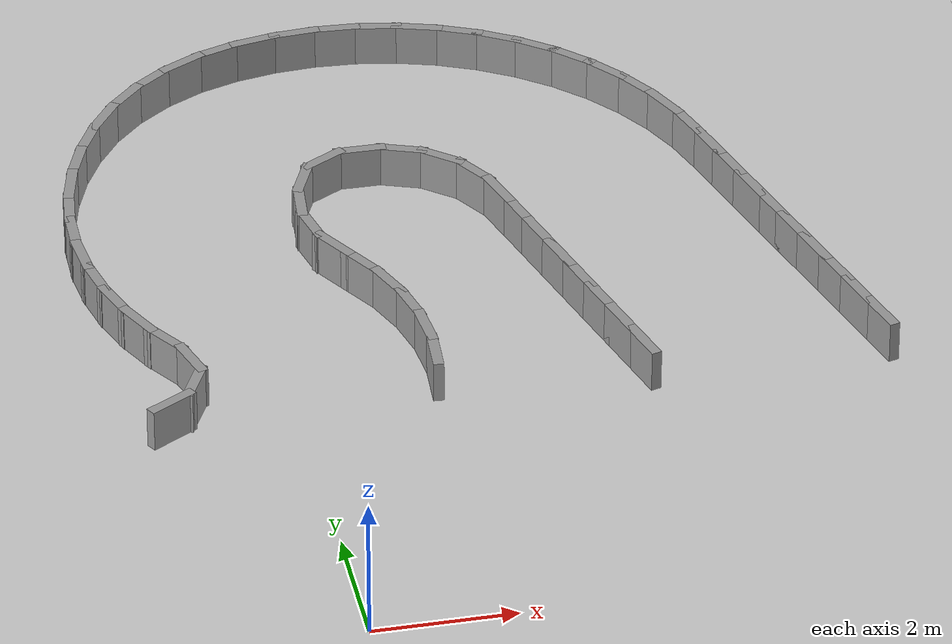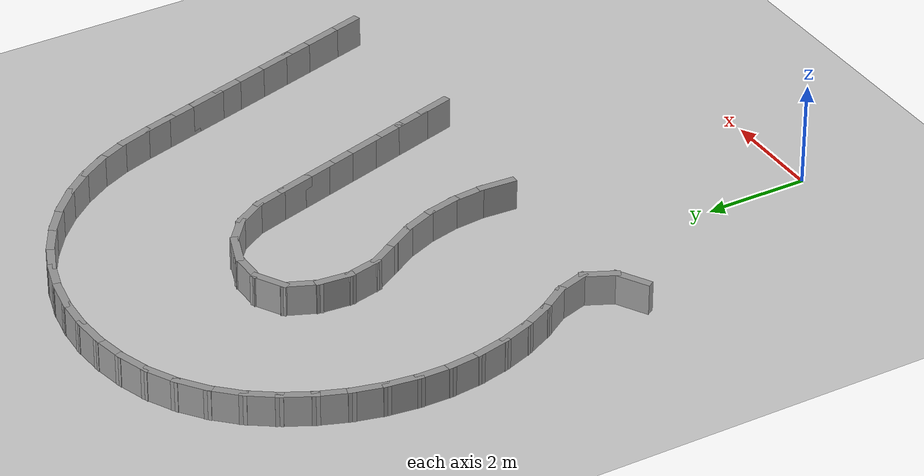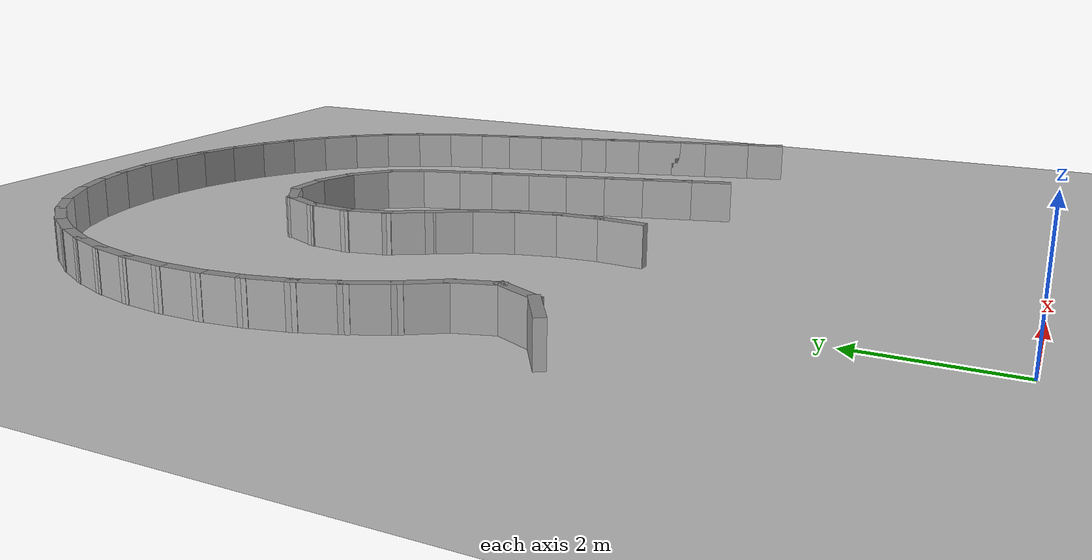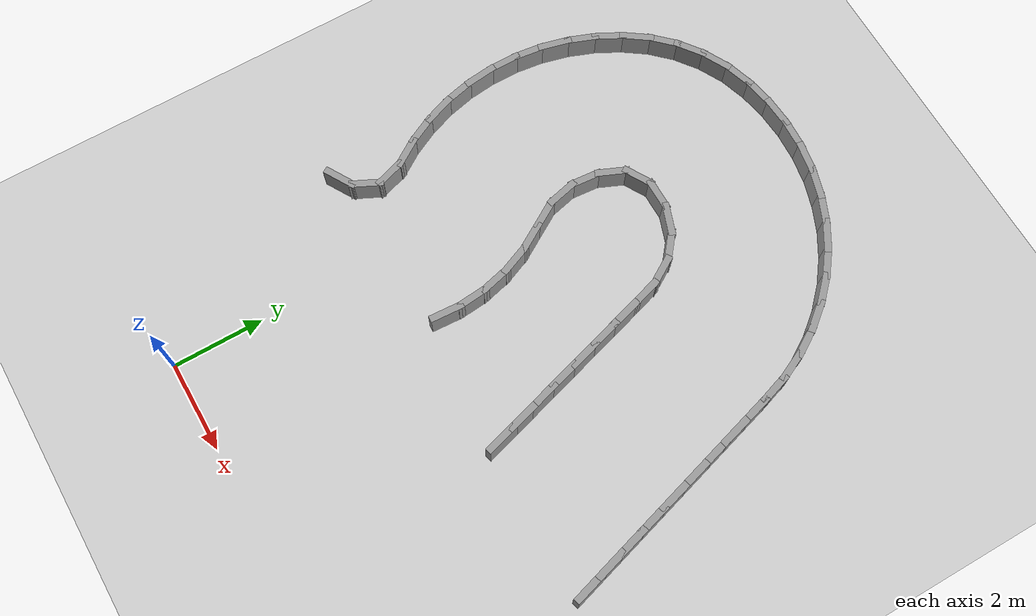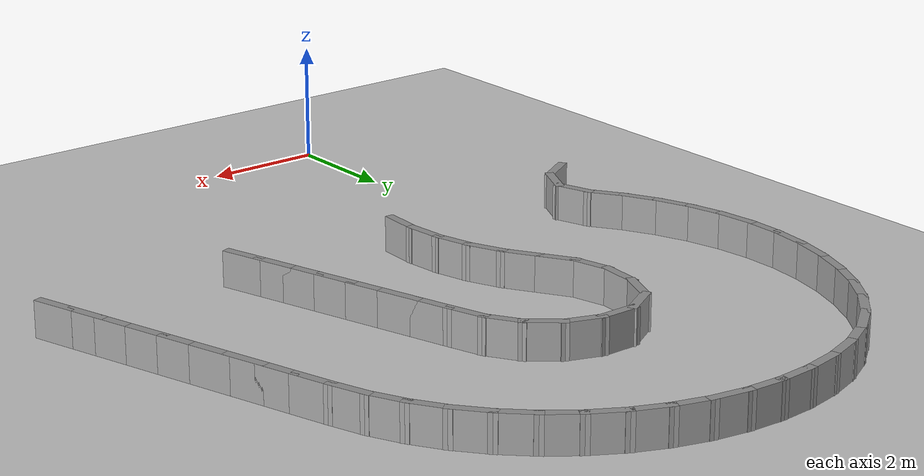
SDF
<sdf version="1.7">
 <world name="default">
  <model name="ground_plane">
   <static>1</static>
   <link name="link">
    <collision name="collision">
     <geometry><plane><normal>0 0 1</normal><size>100 100</size></plane></geometry>
     <surface><friction><ode><mu>100</mu><mu2>50</mu2></ode></friction></surface>
    </collision>
    <visual name="visual">
     <cast_shadows>0</cast_shadows>
     <geometry><plane><normal>0 0 1</normal><size>100 100</size></plane></geometry>
     <material>
      <script><uri>file://media/materials/scripts/gazebo.material</uri><name>Gazebo/Grey</name></script>
     </material>
    </visual>
   </link>
  </model>
  <model name="rand_turn_04">
   <link name="Wall_8">
    <collision name="Wall_8_Collision">
     <geometry><box><size>0.7484 0.1500 0.6000</size></box></geometry>
     <pose>0 0 0.3000 0 -0 0</pose>
    </collision>
    <visual name="Wall_8_Visual">
     <pose>0 0 0.3000 0 -0 0</pose>
     <geometry><box><size>0.7484 0.1500 0.6000</size></box></geometry>
     <material>
      <script><uri>file://media/materials/scripts/gazebo.material</uri><name>Gazebo/Grey</name></script>
      <ambient>1 1 1 1</ambient>
     </material>
    </visual>
    <pose>-1.7801 4.8029 0 0 -0 0.52795</pose>
   </link>
   <link name="Wall_9">
    <collision name="Wall_9_Collision">
     <geometry><box><size>0.7357 0.1500 0.6000</size></box></geometry>
     <pose>0 0 0.3000 0 -0 0</pose>
    </collision>
    <visual name="Wall_9_Visual">
     <pose>0 0 0.3000 0 -0 0</pose>
     <geometry><box><size>0.7357 0.1500 0.6000</size></box></geometry>
     <material>
      <script><uri>file://media/materials/scripts/gazebo.material</uri><name>Gazebo/Grey</name></script>
      <ambient>1 1 1 1</ambient>
     </material>
    </visual>
    <pose>-1.3938 5.2171 0 0 -0 1.11906</pose>
   </link>
   <link name="Wall_10">
    <collision name="Wall_10_Collision">
     <geometry><box><size>0.7359 0.1500 0.6000</size></box></geometry>
     <pose>0 0 0.3000 0 -0 0</pose>
    </collision>
    <visual name="Wall_10_Visual">
     <pose>0 0 0.3000 0 -0 0</pose>
     <geometry><box><size>0.7359 0.1500 0.6000</size></box></geometry>
     <material>
      <script><uri>file://media/materials/scripts/gazebo.material</uri><name>Gazebo/Grey</name></script>
      <ambient>1 1 1 1</ambient>
     </material>
    </visual>
    <pose>-1.3544 5.7598 0 0 -0 1.87746</pose>
   </link>
   <link name="Wall_11">
    <collision name="Wall_11_Collision">
     <geometry><box><size>0.7496 0.1500 0.6000</size></box></geometry>
     <pose>0 0 0.3000 0 -0 0</pose>
    </collision>
    <visual name="Wall_11_Visual">
     <pose>0 0 0.3000 0 -0 0</pose>
     <geometry><box><size>0.7496 0.1500 0.6000</size></box></geometry>
     <material>
      <script><uri>file://media/materials/scripts/gazebo.material</uri><name>Gazebo/Grey</name></script>
      <ambient>1 1 1 1</ambient>
     </material>
    </visual>
    <pose>-1.6074 6.2897 0 0 -0 2.15180</pose>
   </link>
   <link name="Wall_12">
    <collision name="Wall_12_Collision">
     <geometry><box><size>0.7496 0.1500 0.6000</size></box></geometry>
     <pose>0 0 0.3000 0 -0 0</pose>
    </collision>
    <visual name="Wall_12_Visual">
     <pose>0 0 0.3000 0 -0 0</pose>
     <geometry><box><size>0.7496 0.1500 0.6000</size></box></geometry>
     <material>
      <script><uri>file://media/materials/scripts/gazebo.material</uri><name>Gazebo/Grey</name></script>
      <ambient>1 1 1 1</ambient>
     </material>
    </visual>
    <pose>-1.9059 6.8086 0 0 -0 2.03388</pose>
   </link>
   <link name="Wall_13">
    <collision name="Wall_13_Collision">
     <geometry><box><size>0.7497 0.1500 0.6000</size></box></geometry>
     <pose>0 0 0.3000 0 -0 0</pose>
    </collision>
    <visual name="Wall_13_Visual">
     <pose>0 0 0.3000 0 -0 0</pose>
     <geometry><box><size>0.7497 0.1500 0.6000</size></box></geometry>
     <material>
      <script><uri>file://media/materials/scripts/gazebo.material</uri><name>Gazebo/Grey</name></script>
      <ambient>1 1 1 1</ambient>
     </material>
    </visual>
    <pose>-2.1413 7.3589 0 0 -0 1.91606</pose>
   </link>
   <link name="Wall_14">
    <collision name="Wall_14_Collision">
     <geometry><box><size>0.7497 0.1500 0.6000</size></box></geometry>
     <pose>0 0 0.3000 0 -0 0</pose>
    </collision>
    <visual name="Wall_14_Visual">
     <pose>0 0 0.3000 0 -0 0</pose>
     <geometry><box><size>0.7497 0.1500 0.6000</size></box></geometry>
     <material>
      <script><uri>file://media/materials/scripts/gazebo.material</uri><name>Gazebo/Grey</name></script>
      <ambient>1 1 1 1</ambient>
     </material>
    </visual>
    <pose>-2.3101 7.9332 0 0 -0 1.79754</pose>
   </link>
   <link name="Wall_15">
    <collision name="Wall_15_Collision">
     <geometry><box><size>0.7496 0.1500 0.6000</size></box></geometry>
     <pose>0 0 0.3000 0 -0 0</pose>
    </collision>
    <visual name="Wall_15_Visual">
     <pose>0 0 0.3000 0 -0 0</pose>
     <geometry><box><size>0.7496 0.1500 0.6000</size></box></geometry>
     <material>
      <script><uri>file://media/materials/scripts/gazebo.material</uri><name>Gazebo/Grey</name></script>
      <ambient>1 1 1 1</ambient>
     </material>
    </visual>
    <pose>-2.4101 8.5234 0 0 -0 1.67965</pose>
   </link>
   <link name="Wall_16">
    <collision name="Wall_16_Collision">
     <geometry><box><size>0.7496 0.1500 0.6000</size></box></geometry>
     <pose>0 0 0.3000 0 -0 0</pose>
    </collision>
    <visual name="Wall_16_Visual">
     <pose>0 0 0.3000 0 -0 0</pose>
     <geometry><box><size>0.7496 0.1500 0.6000</size></box></geometry>
     <material>
      <script><uri>file://media/materials/scripts/gazebo.material</uri><name>Gazebo/Grey</name></script>
      <ambient>1 1 1 1</ambient>
     </material>
    </visual>
    <pose>-2.4400 9.1213 0 0 -0 1.56183</pose>
   </link>
   <link name="Wall_17">
    <collision name="Wall_17_Collision">
     <geometry><box><size>0.7496 0.1500 0.6000</size></box></geometry>
     <pose>0 0 0.3000 0 -0 0</pose>
    </collision>
    <visual name="Wall_17_Visual">
     <pose>0 0 0.3000 0 -0 0</pose>
     <geometry><box><size>0.7496 0.1500 0.6000</size></box></geometry>
     <material>
      <script><uri>file://media/materials/scripts/gazebo.material</uri><name>Gazebo/Grey</name></script>
      <ambient>1 1 1 1</ambient>
     </material>
    </visual>
    <pose>-2.3994 9.7185 0 0 -0 1.44400</pose>
   </link>
   <link name="Wall_18">
    <collision name="Wall_18_Collision">
     <geometry><box><size>0.7496 0.1500 0.6000</size></box></geometry>
     <pose>0 0 0.3000 0 -0 0</pose>
    </collision>
    <visual name="Wall_18_Visual">
     <pose>0 0 0.3000 0 -0 0</pose>
     <geometry><box><size>0.7496 0.1500 0.6000</size></box></geometry>
     <material>
      <script><uri>file://media/materials/scripts/gazebo.material</uri><name>Gazebo/Grey</name></script>
      <ambient>1 1 1 1</ambient>
     </material>
    </visual>
    <pose>-2.2889 10.3068 0 0 -0 1.32618</pose>
   </link>
   <link name="Wall_19">
    <collision name="Wall_19_Collision">
     <geometry><box><size>0.7496 0.1500 0.6000</size></box></geometry>
     <pose>0 0 0.3000 0 -0 0</pose>
    </collision>
    <visual name="Wall_19_Visual">
     <pose>0 0 0.3000 0 -0 0</pose>
     <geometry><box><size>0.7496 0.1500 0.6000</size></box></geometry>
     <material>
      <script><uri>file://media/materials/scripts/gazebo.material</uri><name>Gazebo/Grey</name></script>
      <ambient>1 1 1 1</ambient>
     </material>
    </visual>
    <pose>-2.1100 10.8780 0 0 -0 1.20836</pose>
   </link>
   <link name="Wall_20">
    <collision name="Wall_20_Collision">
     <geometry><box><size>0.7496 0.1500 0.6000</size></box></geometry>
     <pose>0 0 0.3000 0 -0 0</pose>
    </collision>
    <visual name="Wall_20_Visual">
     <pose>0 0 0.3000 0 -0 0</pose>
     <geometry><box><size>0.7496 0.1500 0.6000</size></box></geometry>
     <material>
      <script><uri>file://media/materials/scripts/gazebo.material</uri><name>Gazebo/Grey</name></script>
      <ambient>1 1 1 1</ambient>
     </material>
    </visual>
    <pose>-1.8652 11.4242 0 0 -0 1.09053</pose>
   </link>
   <link name="Wall_21">
    <collision name="Wall_21_Collision">
     <geometry><box><size>0.7494 0.1500 0.6000</size></box></geometry>
     <pose>0 0 0.3000 0 -0 0</pose>
    </collision>
    <visual name="Wall_21_Visual">
     <pose>0 0 0.3000 0 -0 0</pose>
     <geometry><box><size>0.7494 0.1500 0.6000</size></box></geometry>
     <material>
      <script><uri>file://media/materials/scripts/gazebo.material</uri><name>Gazebo/Grey</name></script>
      <ambient>1 1 1 1</ambient>
     </material>
    </visual>
    <pose>-1.5556 11.9361 0 0 -0 0.96325</pose>
   </link>
   <link name="Wall_22">
    <collision name="Wall_22_Collision">
     <geometry><box><size>0.7493 0.1500 0.6000</size></box></geometry>
     <pose>0 0 0.3000 0 -0 0</pose>
    </collision>
    <visual name="Wall_22_Visual">
     <pose>0 0 0.3000 0 -0 0</pose>
     <geometry><box><size>0.7493 0.1500 0.6000</size></box></geometry>
     <material>
      <script><uri>file://media/materials/scripts/gazebo.material</uri><name>Gazebo/Grey</name></script>
      <ambient>1 1 1 1</ambient>
     </material>
    </visual>
    <pose>-1.1772 12.3986 0 0 -0 0.80688</pose>
   </link>
   <link name="Wall_23">
    <collision name="Wall_23_Collision">
     <geometry><box><size>0.7493 0.1500 0.6000</size></box></geometry>
     <pose>0 0 0.3000 0 -0 0</pose>
    </collision>
    <visual name="Wall_23_Visual">
     <pose>0 0 0.3000 0 -0 0</pose>
     <geometry><box><size>0.7493 0.1500 0.6000</size></box></geometry>
     <material>
      <script><uri>file://media/materials/scripts/gazebo.material</uri><name>Gazebo/Grey</name></script>
      <ambient>1 1 1 1</ambient>
     </material>
    </visual>
    <pose>-0.7307 12.7955 0 0 -0 0.64634</pose>
   </link>
   <link name="Wall_24">
    <collision name="Wall_24_Collision">
     <geometry><box><size>0.7493 0.1500 0.6000</size></box></geometry>
     <pose>0 0 0.3000 0 -0 0</pose>
    </collision>
    <visual name="Wall_24_Visual">
     <pose>0 0 0.3000 0 -0 0</pose>
     <geometry><box><size>0.7493 0.1500 0.6000</size></box></geometry>
     <material>
      <script><uri>file://media/materials/scripts/gazebo.material</uri><name>Gazebo/Grey</name></script>
      <ambient>1 1 1 1</ambient>
     </material>
    </visual>
    <pose>-0.2268 13.1165 0 0 -0 0.48820</pose>
   </link>
   <link name="Wall_25">
    <collision name="Wall_25_Collision">
     <geometry><box><size>0.7493 0.1500 0.6000</size></box></geometry>
     <pose>0 0 0.3000 0 -0 0</pose>
    </collision>
    <visual name="Wall_25_Visual">
     <pose>0 0 0.3000 0 -0 0</pose>
     <geometry><box><size>0.7493 0.1500 0.6000</size></box></geometry>
     <material>
      <script><uri>file://media/materials/scripts/gazebo.material</uri><name>Gazebo/Grey</name></script>
      <ambient>1 1 1 1</ambient>
     </material>
    </visual>
    <pose>0.3219 13.3523 0 0 -0 0.32374</pose>
   </link>
   <link name="Wall_26">
    <collision name="Wall_26_Collision">
     <geometry><box><size>0.7496 0.1500 0.6000</size></box></geometry>
     <pose>0 0 0.3000 0 -0 0</pose>
    </collision>
    <visual name="Wall_26_Visual">
     <pose>0 0 0.3000 0 -0 0</pose>
     <geometry><box><size>0.7496 0.1500 0.6000</size></box></geometry>
     <material>
      <script><uri>file://media/materials/scripts/gazebo.material</uri><name>Gazebo/Grey</name></script>
      <ambient>1 1 1 1</ambient>
     </material>
    </visual>
    <pose>0.9003 13.5045 0 0 -0 0.19081</pose>
   </link>
   <link name="Wall_27">
    <collision name="Wall_27_Collision">
     <geometry><box><size>0.7496 0.1500 0.6000</size></box></geometry>
     <pose>0 0 0.3000 0 -0 0</pose>
    </collision>
    <visual name="Wall_27_Visual">
     <pose>0 0 0.3000 0 -0 0</pose>
     <geometry><box><size>0.7496 0.1500 0.6000</size></box></geometry>
     <material>
      <script><uri>file://media/materials/scripts/gazebo.material</uri><name>Gazebo/Grey</name></script>
      <ambient>1 1 1 1</ambient>
     </material>
    </visual>
    <pose>1.4937 13.5824 0 0 -0 0.07019</pose>
   </link>
   <link name="Wall_28">
    <collision name="Wall_28_Collision">
     <geometry><box><size>0.7496 0.1500 0.6000</size></box></geometry>
     <pose>0 0 0.3000 0 -0 0</pose>
    </collision>
    <visual name="Wall_28_Visual">
     <pose>0 0 0.3000 0 -0 0</pose>
     <geometry><box><size>0.7496 0.1500 0.6000</size></box></geometry>
     <material>
      <script><uri>file://media/materials/scripts/gazebo.material</uri><name>Gazebo/Grey</name></script>
      <ambient>1 1 1 1</ambient>
     </material>
    </visual>
    <pose>2.0922 13.5883 0 0 -0 -0.05044</pose>
   </link>
   <link name="Wall_29">
    <collision name="Wall_29_Collision">
     <geometry><box><size>0.7496 0.1500 0.6000</size></box></geometry>
     <pose>0 0 0.3000 0 -0 0</pose>
    </collision>
    <visual name="Wall_29_Visual">
     <pose>0 0 0.3000 0 -0 0</pose>
     <geometry><box><size>0.7496 0.1500 0.6000</size></box></geometry>
     <material>
      <script><uri>file://media/materials/scripts/gazebo.material</uri><name>Gazebo/Grey</name></script>
      <ambient>1 1 1 1</ambient>
     </material>
    </visual>
    <pose>2.6870 13.5222 0 0 -0 -0.17106</pose>
   </link>
   <link name="Wall_30">
    <collision name="Wall_30_Collision">
     <geometry><box><size>0.7496 0.1500 0.6000</size></box></geometry>
     <pose>0 0 0.3000 0 -0 0</pose>
    </collision>
    <visual name="Wall_30_Visual">
     <pose>0 0 0.3000 0 -0 0</pose>
     <geometry><box><size>0.7496 0.1500 0.6000</size></box></geometry>
     <material>
      <script><uri>file://media/materials/scripts/gazebo.material</uri><name>Gazebo/Grey</name></script>
      <ambient>1 1 1 1</ambient>
     </material>
    </visual>
    <pose>3.2696 13.3849 0 0 -0 -0.29168</pose>
   </link>
   <link name="Wall_31">
    <collision name="Wall_31_Collision">
     <geometry><box><size>0.7496 0.1500 0.6000</size></box></geometry>
     <pose>0 0 0.3000 0 -0 0</pose>
    </collision>
    <visual name="Wall_31_Visual">
     <pose>0 0 0.3000 0 -0 0</pose>
     <geometry><box><size>0.7496 0.1500 0.6000</size></box></geometry>
     <material>
      <script><uri>file://media/materials/scripts/gazebo.material</uri><name>Gazebo/Grey</name></script>
      <ambient>1 1 1 1</ambient>
     </material>
    </visual>
    <pose>3.8314 13.1786 0 0 -0 -0.41231</pose>
   </link>
   <link name="Wall_32">
    <collision name="Wall_32_Collision">
     <geometry><box><size>0.7496 0.1500 0.6000</size></box></geometry>
     <pose>0 0 0.3000 0 -0 0</pose>
    </collision>
    <visual name="Wall_32_Visual">
     <pose>0 0 0.3000 0 -0 0</pose>
     <geometry><box><size>0.7496 0.1500 0.6000</size></box></geometry>
     <material>
      <script><uri>file://media/materials/scripts/gazebo.material</uri><name>Gazebo/Grey</name></script>
      <ambient>1 1 1 1</ambient>
     </material>
    </visual>
    <pose>4.3643 12.9061 0 0 -0 -0.53293</pose>
   </link>
   <link name="Wall_33">
    <collision name="Wall_33_Collision">
     <geometry><box><size>0.7496 0.1500 0.6000</size></box></geometry>
     <pose>0 0 0.3000 0 -0 0</pose>
    </collision>
    <visual name="Wall_33_Visual">
     <pose>0 0 0.3000 0 -0 0</pose>
     <geometry><box><size>0.7496 0.1500 0.6000</size></box></geometry>
     <material>
      <script><uri>file://media/materials/scripts/gazebo.material</uri><name>Gazebo/Grey</name></script>
      <ambient>1 1 1 1</ambient>
     </material>
    </visual>
    <pose>4.8605 12.5715 0 0 -0 -0.65356</pose>
   </link>
   <link name="Wall_34">
    <collision name="Wall_34_Collision">
     <geometry><box><size>0.7496 0.1500 0.6000</size></box></geometry>
     <pose>0 0 0.3000 0 -0 0</pose>
    </collision>
    <visual name="Wall_34_Visual">
     <pose>0 0 0.3000 0 -0 0</pose>
     <geometry><box><size>0.7496 0.1500 0.6000</size></box></geometry>
     <material>
      <script><uri>file://media/materials/scripts/gazebo.material</uri><name>Gazebo/Grey</name></script>
      <ambient>1 1 1 1</ambient>
     </material>
    </visual>
    <pose>5.3129 12.1796 0 0 -0 -0.77418</pose>
   </link>
   <link name="Wall_35">
    <collision name="Wall_35_Collision">
     <geometry><box><size>0.7496 0.1500 0.6000</size></box></geometry>
     <pose>0 0 0.3000 0 -0 0</pose>
    </collision>
    <visual name="Wall_35_Visual">
     <pose>0 0 0.3000 0 -0 0</pose>
     <geometry><box><size>0.7496 0.1500 0.6000</size></box></geometry>
     <material>
      <script><uri>file://media/materials/scripts/gazebo.material</uri><name>Gazebo/Grey</name></script>
      <ambient>1 1 1 1</ambient>
     </material>
    </visual>
    <pose>5.7149 11.7361 0 0 -0 -0.89480</pose>
   </link>
   <link name="Wall_36">
    <collision name="Wall_36_Collision">
     <geometry><box><size>0.7496 0.1500 0.6000</size></box></geometry>
     <pose>0 0 0.3000 0 -0 0</pose>
    </collision>
    <visual name="Wall_36_Visual">
     <pose>0 0 0.3000 0 -0 0</pose>
     <geometry><box><size>0.7496 0.1500 0.6000</size></box></geometry>
     <material>
      <script><uri>file://media/materials/scripts/gazebo.material</uri><name>Gazebo/Grey</name></script>
      <ambient>1 1 1 1</ambient>
     </material>
    </visual>
    <pose>6.0605 11.2475 0 0 -0 -1.01543</pose>
   </link>
   <link name="Wall_37">
    <collision name="Wall_37_Collision">
     <geometry><box><size>0.7496 0.1500 0.6000</size></box></geometry>
     <pose>0 0 0.3000 0 -0 0</pose>
    </collision>
    <visual name="Wall_37_Visual">
     <pose>0 0 0.3000 0 -0 0</pose>
     <geometry><box><size>0.7496 0.1500 0.6000</size></box></geometry>
     <material>
      <script><uri>file://media/materials/scripts/gazebo.material</uri><name>Gazebo/Grey</name></script>
      <ambient>1 1 1 1</ambient>
     </material>
    </visual>
    <pose>6.3448 10.7208 0 0 -0 -1.13624</pose>
   </link>
   <link name="Wall_38">
    <collision name="Wall_38_Collision">
     <geometry><box><size>0.7497 0.1500 0.6000</size></box></geometry>
     <pose>0 0 0.3000 0 -0 0</pose>
    </collision>
    <visual name="Wall_38_Visual">
     <pose>0 0 0.3000 0 -0 0</pose>
     <geometry><box><size>0.7497 0.1500 0.6000</size></box></geometry>
     <material>
      <script><uri>file://media/materials/scripts/gazebo.material</uri><name>Gazebo/Grey</name></script>
      <ambient>1 1 1 1</ambient>
     </material>
    </visual>
    <pose>6.5647 10.1640 0 0 -0 -1.25315</pose>
   </link>
   <link name="Wall_39">
    <collision name="Wall_39_Collision">
     <geometry><box><size>0.7500 0.1500 0.6000</size></box></geometry>
     <pose>0 0 0.3000 0 -0 0</pose>
    </collision>
    <visual name="Wall_39_Visual">
     <pose>0 0 0.3000 0 -0 0</pose>
     <geometry><box><size>0.7500 0.1500 0.6000</size></box></geometry>
     <material>
      <script><uri>file://media/materials/scripts/gazebo.material</uri><name>Gazebo/Grey</name></script>
      <ambient>1 1 1 1</ambient>
     </material>
    </visual>
    <pose>6.7423 9.5911 0 0 -0 -1.28732</pose>
   </link>
   <link name="Wall_40">
    <collision name="Wall_40_Collision">
     <geometry><box><size>0.7500 0.1500 0.6000</size></box></geometry>
     <pose>0 0 0.3000 0 -0 0</pose>
    </collision>
    <visual name="Wall_40_Visual">
     <pose>0 0 0.3000 0 -0 0</pose>
     <geometry><box><size>0.7500 0.1500 0.6000</size></box></geometry>
     <material>
      <script><uri>file://media/materials/scripts/gazebo.material</uri><name>Gazebo/Grey</name></script>
      <ambient>1 1 1 1</ambient>
     </material>
    </visual>
    <pose>6.9101 9.0150 0 0 -0 -1.28732</pose>
   </link>
   <link name="Wall_41">
    <collision name="Wall_41_Collision">
     <geometry><box><size>0.7500 0.1500 0.6000</size></box></geometry>
     <pose>0 0 0.3000 0 -0 0</pose>
    </collision>
    <visual name="Wall_41_Visual">
     <pose>0 0 0.3000 0 -0 0</pose>
     <geometry><box><size>0.7500 0.1500 0.6000</size></box></geometry>
     <material>
      <script><uri>file://media/materials/scripts/gazebo.material</uri><name>Gazebo/Grey</name></script>
      <ambient>1 1 1 1</ambient>
     </material>
    </visual>
    <pose>7.0779 8.4390 0 0 -0 -1.28732</pose>
   </link>
   <link name="Wall_42">
    <collision name="Wall_42_Collision">
     <geometry><box><size>0.7500 0.1500 0.6000</size></box></geometry>
     <pose>0 0 0.3000 0 -0 0</pose>
    </collision>
    <visual name="Wall_42_Visual">
     <pose>0 0 0.3000 0 -0 0</pose>
     <geometry><box><size>0.7500 0.1500 0.6000</size></box></geometry>
     <material>
      <script><uri>file://media/materials/scripts/gazebo.material</uri><name>Gazebo/Grey</name></script>
      <ambient>1 1 1 1</ambient>
     </material>
    </visual>
    <pose>7.2458 7.8629 0 0 -0 -1.28732</pose>
   </link>
   <link name="Wall_43">
    <collision name="Wall_43_Collision">
     <geometry><box><size>0.7500 0.1500 0.6000</size></box></geometry>
     <pose>0 0 0.3000 0 -0 0</pose>
    </collision>
    <visual name="Wall_43_Visual">
     <pose>0 0 0.3000 0 -0 0</pose>
     <geometry><box><size>0.7500 0.1500 0.6000</size></box></geometry>
     <material>
      <script><uri>file://media/materials/scripts/gazebo.material</uri><name>Gazebo/Grey</name></script>
      <ambient>1 1 1 1</ambient>
     </material>
    </visual>
    <pose>7.4136 7.2869 0 0 -0 -1.28732</pose>
   </link>
   <link name="Wall_44">
    <collision name="Wall_44_Collision">
     <geometry><box><size>0.7500 0.1500 0.6000</size></box></geometry>
     <pose>0 0 0.3000 0 -0 0</pose>
    </collision>
    <visual name="Wall_44_Visual">
     <pose>0 0 0.3000 0 -0 0</pose>
     <geometry><box><size>0.7500 0.1500 0.6000</size></box></geometry>
     <material>
      <script><uri>file://media/materials/scripts/gazebo.material</uri><name>Gazebo/Grey</name></script>
      <ambient>1 1 1 1</ambient>
     </material>
    </visual>
    <pose>7.5814 6.7108 0 0 -0 -1.28732</pose>
   </link>
   <link name="Wall_45">
    <collision name="Wall_45_Collision">
     <geometry><box><size>0.7500 0.1500 0.6000</size></box></geometry>
     <pose>0 0 0.3000 0 -0 0</pose>
    </collision>
    <visual name="Wall_45_Visual">
     <pose>0 0 0.3000 0 -0 0</pose>
     <geometry><box><size>0.7500 0.1500 0.6000</size></box></geometry>
     <material>
      <script><uri>file://media/materials/scripts/gazebo.material</uri><name>Gazebo/Grey</name></script>
      <ambient>1 1 1 1</ambient>
     </material>
    </visual>
    <pose>7.7492 6.1348 0 0 -0 -1.28732</pose>
   </link>
   <link name="Wall_46">
    <collision name="Wall_46_Collision">
     <geometry><box><size>0.7500 0.1500 0.6000</size></box></geometry>
     <pose>0 0 0.3000 0 -0 0</pose>
    </collision>
    <visual name="Wall_46_Visual">
     <pose>0 0 0.3000 0 -0 0</pose>
     <geometry><box><size>0.7500 0.1500 0.6000</size></box></geometry>
     <material>
      <script><uri>file://media/materials/scripts/gazebo.material</uri><name>Gazebo/Grey</name></script>
      <ambient>1 1 1 1</ambient>
     </material>
    </visual>
    <pose>7.9170 5.5587 0 0 -0 -1.28732</pose>
   </link>
   <link name="Wall_47">
    <collision name="Wall_47_Collision">
     <geometry><box><size>0.7500 0.1500 0.6000</size></box></geometry>
     <pose>0 0 0.3000 0 -0 0</pose>
    </collision>
    <visual name="Wall_47_Visual">
     <pose>0 0 0.3000 0 -0 0</pose>
     <geometry><box><size>0.7500 0.1500 0.6000</size></box></geometry>
     <material>
      <script><uri>file://media/materials/scripts/gazebo.material</uri><name>Gazebo/Grey</name></script>
      <ambient>1 1 1 1</ambient>
     </material>
    </visual>
    <pose>8.0849 4.9826 0 0 -0 -1.28732</pose>
   </link>
   <link name="Wall_84">
    <collision name="Wall_84_Collision">
     <geometry><box><size>0.7494 0.1500 0.6000</size></box></geometry>
     <pose>0 0 0.3000 0 -0 0</pose>
    </collision>
    <visual name="Wall_84_Visual">
     <pose>0 0 0.3000 0 -0 0</pose>
     <geometry><box><size>0.7494 0.1500 0.6000</size></box></geometry>
     <material>
      <script><uri>file://media/materials/scripts/gazebo.material</uri><name>Gazebo/Grey</name></script>
      <ambient>1 1 1 1</ambient>
     </material>
    </visual>
    <pose>1.9249 5.3012 0 0 -0 1.51177</pose>
   </link>
   <link name="Wall_85">
    <collision name="Wall_85_Collision">
     <geometry><box><size>0.7494 0.1500 0.6000</size></box></geometry>
     <pose>0 0 0.3000 0 -0 0</pose>
    </collision>
    <visual name="Wall_85_Visual">
     <pose>0 0 0.3000 0 -0 0</pose>
     <geometry><box><size>0.7494 0.1500 0.6000</size></box></geometry>
     <material>
      <script><uri>file://media/materials/scripts/gazebo.material</uri><name>Gazebo/Grey</name></script>
      <ambient>1 1 1 1</ambient>
     </material>
    </visual>
    <pose>1.9156 5.8989 0 0 -0 1.66064</pose>
   </link>
   <link name="Wall_86">
    <collision name="Wall_86_Collision">
     <geometry><box><size>0.7494 0.1500 0.6000</size></box></geometry>
     <pose>0 0 0.3000 0 -0 0</pose>
    </collision>
    <visual name="Wall_86_Visual">
     <pose>0 0 0.3000 0 -0 0</pose>
     <geometry><box><size>0.7494 0.1500 0.6000</size></box></geometry>
     <material>
      <script><uri>file://media/materials/scripts/gazebo.material</uri><name>Gazebo/Grey</name></script>
      <ambient>1 1 1 1</ambient>
     </material>
    </visual>
    <pose>1.8169 6.4884 0 0 -0 1.81287</pose>
   </link>
   <link name="Wall_87">
    <collision name="Wall_87_Collision">
     <geometry><box><size>0.7494 0.1500 0.6000</size></box></geometry>
     <pose>0 0 0.3000 0 -0 0</pose>
    </collision>
    <visual name="Wall_87_Visual">
     <pose>0 0 0.3000 0 -0 0</pose>
     <geometry><box><size>0.7494 0.1500 0.6000</size></box></geometry>
     <material>
      <script><uri>file://media/materials/scripts/gazebo.material</uri><name>Gazebo/Grey</name></script>
      <ambient>1 1 1 1</ambient>
     </material>
    </visual>
    <pose>1.6311 7.0565 0 0 -0 1.96106</pose>
   </link>
   <link name="Wall_88">
    <collision name="Wall_88_Collision">
     <geometry><box><size>0.7494 0.1500 0.6000</size></box></geometry>
     <pose>0 0 0.3000 0 -0 0</pose>
    </collision>
    <visual name="Wall_88_Visual">
     <pose>0 0 0.3000 0 -0 0</pose>
     <geometry><box><size>0.7494 0.1500 0.6000</size></box></geometry>
     <material>
      <script><uri>file://media/materials/scripts/gazebo.material</uri><name>Gazebo/Grey</name></script>
      <ambient>1 1 1 1</ambient>
     </material>
    </visual>
    <pose>1.3625 7.5904 0 0 -0 2.11240</pose>
   </link>
   <link name="Wall_89">
    <collision name="Wall_89_Collision">
     <geometry><box><size>0.7481 0.1500 0.6000</size></box></geometry>
     <pose>0 0 0.3000 0 -0 0</pose>
    </collision>
    <visual name="Wall_89_Visual">
     <pose>0 0 0.3000 0 -0 0</pose>
     <geometry><box><size>0.7481 0.1500 0.6000</size></box></geometry>
     <material>
      <script><uri>file://media/materials/scripts/gazebo.material</uri><name>Gazebo/Grey</name></script>
      <ambient>1 1 1 1</ambient>
     </material>
    </visual>
    <pose>1.0541 8.1036 0 0 -0 2.11153</pose>
   </link>
   <link name="Wall_90">
    <collision name="Wall_90_Collision">
     <geometry><box><size>0.7474 0.1500 0.6000</size></box></geometry>
     <pose>0 0 0.3000 0 -0 0</pose>
    </collision>
    <visual name="Wall_90_Visual">
     <pose>0 0 0.3000 0 -0 0</pose>
     <geometry><box><size>0.7474 0.1500 0.6000</size></box></geometry>
     <material>
      <script><uri>file://media/materials/scripts/gazebo.material</uri><name>Gazebo/Grey</name></script>
      <ambient>1 1 1 1</ambient>
     </material>
    </visual>
    <pose>0.8317 8.6507 0 0 -0 1.80212</pose>
   </link>
   <link name="Wall_91">
    <collision name="Wall_91_Collision">
     <geometry><box><size>0.7474 0.1500 0.6000</size></box></geometry>
     <pose>0 0 0.3000 0 -0 0</pose>
    </collision>
    <visual name="Wall_91_Visual">
     <pose>0 0 0.3000 0 -0 0</pose>
     <geometry><box><size>0.7474 0.1500 0.6000</size></box></geometry>
     <material>
      <script><uri>file://media/materials/scripts/gazebo.material</uri><name>Gazebo/Grey</name></script>
      <ambient>1 1 1 1</ambient>
     </material>
    </visual>
    <pose>0.7893 9.2391 0 0 -0 1.48323</pose>
   </link>
   <link name="Wall_92">
    <collision name="Wall_92_Collision">
     <geometry><box><size>0.7474 0.1500 0.6000</size></box></geometry>
     <pose>0 0 0.3000 0 -0 0</pose>
    </collision>
    <visual name="Wall_92_Visual">
     <pose>0 0 0.3000 0 -0 0</pose>
     <geometry><box><size>0.7474 0.1500 0.6000</size></box></geometry>
     <material>
      <script><uri>file://media/materials/scripts/gazebo.material</uri><name>Gazebo/Grey</name></script>
      <ambient>1 1 1 1</ambient>
     </material>
    </visual>
    <pose>0.9336 9.8110 0 0 -0 1.16433</pose>
   </link>
   <link name="Wall_93">
    <collision name="Wall_93_Collision">
     <geometry><box><size>0.7271 0.1500 0.6000</size></box></geometry>
     <pose>0 0 0.3000 0 -0 0</pose>
    </collision>
    <visual name="Wall_93_Visual">
     <pose>0 0 0.3000 0 -0 0</pose>
     <geometry><box><size>0.7271 0.1500 0.6000</size></box></geometry>
     <material>
      <script><uri>file://media/materials/scripts/gazebo.material</uri><name>Gazebo/Grey</name></script>
      <ambient>1 1 1 1</ambient>
     </material>
    </visual>
    <pose>1.3019 10.2289 0 0 -0 0.52081</pose>
   </link>
   <link name="Wall_94">
    <collision name="Wall_94_Collision">
     <geometry><box><size>0.7471 0.1500 0.6000</size></box></geometry>
     <pose>0 0 0.3000 0 -0 0</pose>
    </collision>
    <visual name="Wall_94_Visual">
     <pose>0 0 0.3000 0 -0 0</pose>
     <geometry><box><size>0.7471 0.1500 0.6000</size></box></geometry>
     <material>
      <script><uri>file://media/materials/scripts/gazebo.material</uri><name>Gazebo/Grey</name></script>
      <ambient>1 1 1 1</ambient>
     </material>
    </visual>
    <pose>1.8508 10.3710 0 0 -0 -0.00508</pose>
   </link>
   <link name="Wall_95">
    <collision name="Wall_95_Collision">
     <geometry><box><size>0.7471 0.1500 0.6000</size></box></geometry>
     <pose>0 0 0.3000 0 -0 0</pose>
    </collision>
    <visual name="Wall_95_Visual">
     <pose>0 0 0.3000 0 -0 0</pose>
     <geometry><box><size>0.7471 0.1500 0.6000</size></box></geometry>
     <material>
      <script><uri>file://media/materials/scripts/gazebo.material</uri><name>Gazebo/Grey</name></script>
      <ambient>1 1 1 1</ambient>
     </material>
    </visual>
    <pose>2.4303 10.2686 0 0 -0 -0.34456</pose>
   </link>
   <link name="Wall_96">
    <collision name="Wall_96_Collision">
     <geometry><box><size>0.7471 0.1500 0.6000</size></box></geometry>
     <pose>0 0 0.3000 0 -0 0</pose>
    </collision>
    <visual name="Wall_96_Visual">
     <pose>0 0 0.3000 0 -0 0</pose>
     <geometry><box><size>0.7471 0.1500 0.6000</size></box></geometry>
     <material>
      <script><uri>file://media/materials/scripts/gazebo.material</uri><name>Gazebo/Grey</name></script>
      <ambient>1 1 1 1</ambient>
     </material>
    </visual>
    <pose>2.9425 9.9789 0 0 -0 -0.68493</pose>
   </link>
   <link name="Wall_97">
    <collision name="Wall_97_Collision">
     <geometry><box><size>0.7471 0.1500 0.6000</size></box></geometry>
     <pose>0 0 0.3000 0 -0 0</pose>
    </collision>
    <visual name="Wall_97_Visual">
     <pose>0 0 0.3000 0 -0 0</pose>
     <geometry><box><size>0.7471 0.1500 0.6000</size></box></geometry>
     <material>
      <script><uri>file://media/materials/scripts/gazebo.material</uri><name>Gazebo/Grey</name></script>
      <ambient>1 1 1 1</ambient>
     </material>
    </visual>
    <pose>3.3289 9.5350 0 0 -0 -1.02427</pose>
   </link>
   <link name="Wall_98">
    <collision name="Wall_98_Collision">
     <geometry><box><size>0.7498 0.1500 0.6000</size></box></geometry>
     <pose>0 0 0.3000 0 -0 0</pose>
    </collision>
    <visual name="Wall_98_Visual">
     <pose>0 0 0.3000 0 -0 0</pose>
     <geometry><box><size>0.7498 0.1500 0.6000</size></box></geometry>
     <material>
      <script><uri>file://media/materials/scripts/gazebo.material</uri><name>Gazebo/Grey</name></script>
      <ambient>1 1 1 1</ambient>
     </material>
    </visual>
    <pose>3.5716 8.9931 0 0 -0 -1.27460</pose>
   </link>
   <link name="Wall_99">
    <collision name="Wall_99_Collision">
     <geometry><box><size>0.7500 0.1500 0.6000</size></box></geometry>
     <pose>0 0 0.3000 0 -0 0</pose>
    </collision>
    <visual name="Wall_99_Visual">
     <pose>0 0 0.3000 0 -0 0</pose>
     <geometry><box><size>0.7500 0.1500 0.6000</size></box></geometry>
     <material>
      <script><uri>file://media/materials/scripts/gazebo.material</uri><name>Gazebo/Grey</name></script>
      <ambient>1 1 1 1</ambient>
     </material>
    </visual>
    <pose>3.7431 8.4182 0 0 -0 -1.28732</pose>
   </link>
   <link name="Wall_100">
    <collision name="Wall_100_Collision">
     <geometry><box><size>0.7500 0.1500 0.6000</size></box></geometry>
     <pose>0 0 0.3000 0 -0 0</pose>
    </collision>
    <visual name="Wall_100_Visual">
     <pose>0 0 0.3000 0 -0 0</pose>
     <geometry><box><size>0.7500 0.1500 0.6000</size></box></geometry>
     <material>
      <script><uri>file://media/materials/scripts/gazebo.material</uri><name>Gazebo/Grey</name></script>
      <ambient>1 1 1 1</ambient>
     </material>
    </visual>
    <pose>3.9109 7.8422 0 0 -0 -1.28732</pose>
   </link>
   <link name="Wall_101">
    <collision name="Wall_101_Collision">
     <geometry><box><size>0.7500 0.1500 0.6000</size></box></geometry>
     <pose>0 0 0.3000 0 -0 0</pose>
    </collision>
    <visual name="Wall_101_Visual">
     <pose>0 0 0.3000 0 -0 0</pose>
     <geometry><box><size>0.7500 0.1500 0.6000</size></box></geometry>
     <material>
      <script><uri>file://media/materials/scripts/gazebo.material</uri><name>Gazebo/Grey</name></script>
      <ambient>1 1 1 1</ambient>
     </material>
    </visual>
    <pose>4.0787 7.2661 0 0 -0 -1.28732</pose>
   </link>
   <link name="Wall_102">
    <collision name="Wall_102_Collision">
     <geometry><box><size>0.7500 0.1500 0.6000</size></box></geometry>
     <pose>0 0 0.3000 0 -0 0</pose>
    </collision>
    <visual name="Wall_102_Visual">
     <pose>0 0 0.3000 0 -0 0</pose>
     <geometry><box><size>0.7500 0.1500 0.6000</size></box></geometry>
     <material>
      <script><uri>file://media/materials/scripts/gazebo.material</uri><name>Gazebo/Grey</name></script>
      <ambient>1 1 1 1</ambient>
     </material>
    </visual>
    <pose>4.2465 6.6901 0 0 -0 -1.28732</pose>
   </link>
   <link name="Wall_103">
    <collision name="Wall_103_Collision">
     <geometry><box><size>0.7500 0.1500 0.6000</size></box></geometry>
     <pose>0 0 0.3000 0 -0 0</pose>
    </collision>
    <visual name="Wall_103_Visual">
     <pose>0 0 0.3000 0 -0 0</pose>
     <geometry><box><size>0.7500 0.1500 0.6000</size></box></geometry>
     <material>
      <script><uri>file://media/materials/scripts/gazebo.material</uri><name>Gazebo/Grey</name></script>
      <ambient>1 1 1 1</ambient>
     </material>
    </visual>
    <pose>4.4143 6.1140 0 0 -0 -1.28732</pose>
   </link>
   <link name="Wall_104">
    <collision name="Wall_104_Collision">
     <geometry><box><size>0.7500 0.1500 0.6000</size></box></geometry>
     <pose>0 0 0.3000 0 -0 0</pose>
    </collision>
    <visual name="Wall_104_Visual">
     <pose>0 0 0.3000 0 -0 0</pose>
     <geometry><box><size>0.7500 0.1500 0.6000</size></box></geometry>
     <material>
      <script><uri>file://media/materials/scripts/gazebo.material</uri><name>Gazebo/Grey</name></script>
      <ambient>1 1 1 1</ambient>
     </material>
    </visual>
    <pose>4.5821 5.5380 0 0 -0 -1.28732</pose>
   </link>
   <link name="Wall_105">
    <collision name="Wall_105_Collision">
     <geometry><box><size>0.7500 0.1500 0.6000</size></box></geometry>
     <pose>0 0 0.3000 0 -0 0</pose>
    </collision>
    <visual name="Wall_105_Visual">
     <pose>0 0 0.3000 0 -0 0</pose>
     <geometry><box><size>0.7500 0.1500 0.6000</size></box></geometry>
     <material>
      <script><uri>file://media/materials/scripts/gazebo.material</uri><name>Gazebo/Grey</name></script>
      <ambient>1 1 1 1</ambient>
     </material>
    </visual>
    <pose>4.7500 4.9619 0 0 -0 -1.28732</pose>
   </link>
   <static>1</static>
  </model>
 </world>
</sdf>
